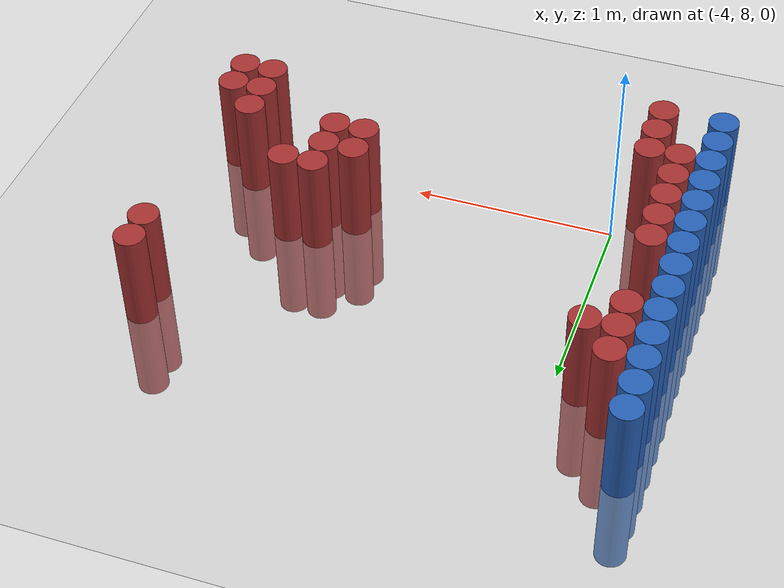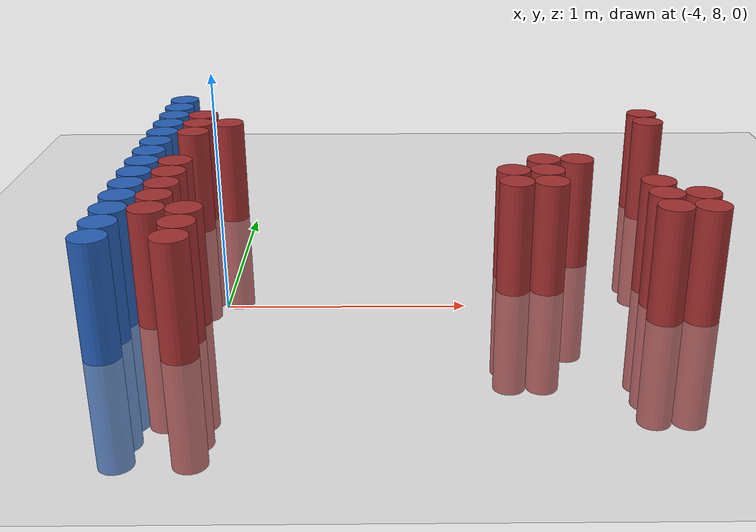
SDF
<sdf version="1.6">
 <world name="default">
  <model name="ground_plane">
   <static>1</static>
   <link name="link">
    <collision name="collision">
     <geometry><plane><normal>0 0 1</normal><size>100 100</size></plane></geometry>
     <surface><friction><ode><mu>100</mu><mu2>50</mu2></ode></friction></surface>
    </collision>
    <visual name="visual">
     <cast_shadows>0</cast_shadows>
     <geometry><plane><normal>0 0 1</normal><size>100 100</size></plane></geometry>
     <material>
      <script><uri>file://media/materials/scripts/gazebo.material</uri><name>Gazebo/Grey</name></script>
     </material>
    </visual>
   </link>
  </model>
  <model name="unit_cylinder_112">
   <static>1</static>
   <pose>-4.425000 7.575000 0.000000 0.000000 0.000000 0.000000</pose>
   <link name="link">
    <inertial>
     <mass>1</mass>
     <inertia><ixx>0.145833</ixx><ixy>0</ixy><ixz>0</ixz><iyy>0.145833</iyy><iyz>0</iyz><izz>0.125</izz></inertia>
    </inertial>
    <collision name="collision">
     <geometry><cylinder><radius>0.075000</radius><length>1</length></cylinder></geometry>
    </collision>
    <visual name="visual">
     <geometry><cylinder><radius>0.075000</radius><length>1</length></cylinder></geometry>
     <material>
      <ambient>0.152000 0.379000 0.720000 1</ambient>
      <diffuse>0.152000 0.379000 0.720000 1</diffuse>
     </material>
     <material>
      <script><name>Gazebo/Grey</name><uri>file://media/materials/scripts/gazebo.material</uri></script>
     </material>
    </visual>
    <sensor name="sensor_contact" type="contact"><contact><collision>collision</collision></contact></sensor>
   </link>
   <plugin filename="gz-sim-touchplugin-system" name="gz::sim::systems::TouchPlugin">
    <target>robot</target>
    <namespace>robot</namespace>
    <time>0.001</time>
    <enabled>true</enabled>
   </plugin>
  </model>
  <model name="unit_cylinder_113">
   <static>1</static>
   <pose>-4.425000 7.725000 0.000000 0.000000 0.000000 0.000000</pose>
   <link name="link">
    <inertial>
     <mass>1</mass>
     <inertia><ixx>0.145833</ixx><ixy>0</ixy><ixz>0</ixz><iyy>0.145833</iyy><iyz>0</iyz><izz>0.125</izz></inertia>
    </inertial>
    <collision name="collision">
     <geometry><cylinder><radius>0.075000</radius><length>1</length></cylinder></geometry>
    </collision>
    <visual name="visual">
     <geometry><cylinder><radius>0.075000</radius><length>1</length></cylinder></geometry>
     <material>
      <ambient>0.152000 0.379000 0.720000 1</ambient>
      <diffuse>0.152000 0.379000 0.720000 1</diffuse>
     </material>
     <material>
      <script><name>Gazebo/Grey</name><uri>file://media/materials/scripts/gazebo.material</uri></script>
     </material>
    </visual>
    <sensor name="sensor_contact" type="contact"><contact><collision>collision</collision></contact></sensor>
   </link>
   <plugin filename="gz-sim-touchplugin-system" name="gz::sim::systems::TouchPlugin">
    <target>robot</target>
    <namespace>robot</namespace>
    <time>0.001</time>
    <enabled>true</enabled>
   </plugin>
  </model>
  <model name="unit_cylinder_114">
   <static>1</static>
   <pose>-4.425000 7.875000 0.000000 0.000000 0.000000 0.000000</pose>
   <link name="link">
    <inertial>
     <mass>1</mass>
     <inertia><ixx>0.145833</ixx><ixy>0</ixy><ixz>0</ixz><iyy>0.145833</iyy><iyz>0</iyz><izz>0.125</izz></inertia>
    </inertial>
    <collision name="collision">
     <geometry><cylinder><radius>0.075000</radius><length>1</length></cylinder></geometry>
    </collision>
    <visual name="visual">
     <geometry><cylinder><radius>0.075000</radius><length>1</length></cylinder></geometry>
     <material>
      <ambient>0.152000 0.379000 0.720000 1</ambient>
      <diffuse>0.152000 0.379000 0.720000 1</diffuse>
     </material>
     <material>
      <script><name>Gazebo/Grey</name><uri>file://media/materials/scripts/gazebo.material</uri></script>
     </material>
    </visual>
    <sensor name="sensor_contact" type="contact"><contact><collision>collision</collision></contact></sensor>
   </link>
   <plugin filename="gz-sim-touchplugin-system" name="gz::sim::systems::TouchPlugin">
    <target>robot</target>
    <namespace>robot</namespace>
    <time>0.001</time>
    <enabled>true</enabled>
   </plugin>
  </model>
  <model name="unit_cylinder_115">
   <static>1</static>
   <pose>-4.425000 8.025000 0.000000 0.000000 0.000000 0.000000</pose>
   <link name="link">
    <inertial>
     <mass>1</mass>
     <inertia><ixx>0.145833</ixx><ixy>0</ixy><ixz>0</ixz><iyy>0.145833</iyy><iyz>0</iyz><izz>0.125</izz></inertia>
    </inertial>
    <collision name="collision">
     <geometry><cylinder><radius>0.075000</radius><length>1</length></cylinder></geometry>
    </collision>
    <visual name="visual">
     <geometry><cylinder><radius>0.075000</radius><length>1</length></cylinder></geometry>
     <material>
      <ambient>0.152000 0.379000 0.720000 1</ambient>
      <diffuse>0.152000 0.379000 0.720000 1</diffuse>
     </material>
     <material>
      <script><name>Gazebo/Grey</name><uri>file://media/materials/scripts/gazebo.material</uri></script>
     </material>
    </visual>
    <sensor name="sensor_contact" type="contact"><contact><collision>collision</collision></contact></sensor>
   </link>
   <plugin filename="gz-sim-touchplugin-system" name="gz::sim::systems::TouchPlugin">
    <target>robot</target>
    <namespace>robot</namespace>
    <time>0.001</time>
    <enabled>true</enabled>
   </plugin>
  </model>
  <model name="unit_cylinder_116">
   <static>1</static>
   <pose>-4.425000 8.175000 0.000000 0.000000 0.000000 0.000000</pose>
   <link name="link">
    <inertial>
     <mass>1</mass>
     <inertia><ixx>0.145833</ixx><ixy>0</ixy><ixz>0</ixz><iyy>0.145833</iyy><iyz>0</iyz><izz>0.125</izz></inertia>
    </inertial>
    <collision name="collision">
     <geometry><cylinder><radius>0.075000</radius><length>1</length></cylinder></geometry>
    </collision>
    <visual name="visual">
     <geometry><cylinder><radius>0.075000</radius><length>1</length></cylinder></geometry>
     <material>
      <ambient>0.152000 0.379000 0.720000 1</ambient>
      <diffuse>0.152000 0.379000 0.720000 1</diffuse>
     </material>
     <material>
      <script><name>Gazebo/Grey</name><uri>file://media/materials/scripts/gazebo.material</uri></script>
     </material>
    </visual>
    <sensor name="sensor_contact" type="contact"><contact><collision>collision</collision></contact></sensor>
   </link>
   <plugin filename="gz-sim-touchplugin-system" name="gz::sim::systems::TouchPlugin">
    <target>robot</target>
    <namespace>robot</namespace>
    <time>0.001</time>
    <enabled>true</enabled>
   </plugin>
  </model>
  <model name="unit_cylinder_117">
   <static>1</static>
   <pose>-4.425000 8.325000 0.000000 0.000000 0.000000 0.000000</pose>
   <link name="link">
    <inertial>
     <mass>1</mass>
     <inertia><ixx>0.145833</ixx><ixy>0</ixy><ixz>0</ixz><iyy>0.145833</iyy><iyz>0</iyz><izz>0.125</izz></inertia>
    </inertial>
    <collision name="collision">
     <geometry><cylinder><radius>0.075000</radius><length>1</length></cylinder></geometry>
    </collision>
    <visual name="visual">
     <geometry><cylinder><radius>0.075000</radius><length>1</length></cylinder></geometry>
     <material>
      <ambient>0.152000 0.379000 0.720000 1</ambient>
      <diffuse>0.152000 0.379000 0.720000 1</diffuse>
     </material>
     <material>
      <script><name>Gazebo/Grey</name><uri>file://media/materials/scripts/gazebo.material</uri></script>
     </material>
    </visual>
    <sensor name="sensor_contact" type="contact"><contact><collision>collision</collision></contact></sensor>
   </link>
   <plugin filename="gz-sim-touchplugin-system" name="gz::sim::systems::TouchPlugin">
    <target>robot</target>
    <namespace>robot</namespace>
    <time>0.001</time>
    <enabled>true</enabled>
   </plugin>
  </model>
  <model name="unit_cylinder_118">
   <static>1</static>
   <pose>-4.425000 8.475000 0.000000 0.000000 0.000000 0.000000</pose>
   <link name="link">
    <inertial>
     <mass>1</mass>
     <inertia><ixx>0.145833</ixx><ixy>0</ixy><ixz>0</ixz><iyy>0.145833</iyy><iyz>0</iyz><izz>0.125</izz></inertia>
    </inertial>
    <collision name="collision">
     <geometry><cylinder><radius>0.075000</radius><length>1</length></cylinder></geometry>
    </collision>
    <visual name="visual">
     <geometry><cylinder><radius>0.075000</radius><length>1</length></cylinder></geometry>
     <material>
      <ambient>0.152000 0.379000 0.720000 1</ambient>
      <diffuse>0.152000 0.379000 0.720000 1</diffuse>
     </material>
     <material>
      <script><name>Gazebo/Grey</name><uri>file://media/materials/scripts/gazebo.material</uri></script>
     </material>
    </visual>
    <sensor name="sensor_contact" type="contact"><contact><collision>collision</collision></contact></sensor>
   </link>
   <plugin filename="gz-sim-touchplugin-system" name="gz::sim::systems::TouchPlugin">
    <target>robot</target>
    <namespace>robot</namespace>
    <time>0.001</time>
    <enabled>true</enabled>
   </plugin>
  </model>
  <model name="unit_cylinder_119">
   <static>1</static>
   <pose>-4.425000 8.625000 0.000000 0.000000 0.000000 0.000000</pose>
   <link name="link">
    <inertial>
     <mass>1</mass>
     <inertia><ixx>0.145833</ixx><ixy>0</ixy><ixz>0</ixz><iyy>0.145833</iyy><iyz>0</iyz><izz>0.125</izz></inertia>
    </inertial>
    <collision name="collision">
     <geometry><cylinder><radius>0.075000</radius><length>1</length></cylinder></geometry>
    </collision>
    <visual name="visual">
     <geometry><cylinder><radius>0.075000</radius><length>1</length></cylinder></geometry>
     <material>
      <ambient>0.152000 0.379000 0.720000 1</ambient>
      <diffuse>0.152000 0.379000 0.720000 1</diffuse>
     </material>
     <material>
      <script><name>Gazebo/Grey</name><uri>file://media/materials/scripts/gazebo.material</uri></script>
     </material>
    </visual>
    <sensor name="sensor_contact" type="contact"><contact><collision>collision</collision></contact></sensor>
   </link>
   <plugin filename="gz-sim-touchplugin-system" name="gz::sim::systems::TouchPlugin">
    <target>robot</target>
    <namespace>robot</namespace>
    <time>0.001</time>
    <enabled>true</enabled>
   </plugin>
  </model>
  <model name="unit_cylinder_120">
   <static>1</static>
   <pose>-4.425000 8.775000 0.000000 0.000000 0.000000 0.000000</pose>
   <link name="link">
    <inertial>
     <mass>1</mass>
     <inertia><ixx>0.145833</ixx><ixy>0</ixy><ixz>0</ixz><iyy>0.145833</iyy><iyz>0</iyz><izz>0.125</izz></inertia>
    </inertial>
    <collision name="collision">
     <geometry><cylinder><radius>0.075000</radius><length>1</length></cylinder></geometry>
    </collision>
    <visual name="visual">
     <geometry><cylinder><radius>0.075000</radius><length>1</length></cylinder></geometry>
     <material>
      <ambient>0.152000 0.379000 0.720000 1</ambient>
      <diffuse>0.152000 0.379000 0.720000 1</diffuse>
     </material>
     <material>
      <script><name>Gazebo/Grey</name><uri>file://media/materials/scripts/gazebo.material</uri></script>
     </material>
    </visual>
    <sensor name="sensor_contact" type="contact"><contact><collision>collision</collision></contact></sensor>
   </link>
   <plugin filename="gz-sim-touchplugin-system" name="gz::sim::systems::TouchPlugin">
    <target>robot</target>
    <namespace>robot</namespace>
    <time>0.001</time>
    <enabled>true</enabled>
   </plugin>
  </model>
  <model name="unit_cylinder_121">
   <static>1</static>
   <pose>-4.425000 8.925000 0.000000 0.000000 0.000000 0.000000</pose>
   <link name="link">
    <inertial>
     <mass>1</mass>
     <inertia><ixx>0.145833</ixx><ixy>0</ixy><ixz>0</ixz><iyy>0.145833</iyy><iyz>0</iyz><izz>0.125</izz></inertia>
    </inertial>
    <collision name="collision">
     <geometry><cylinder><radius>0.075000</radius><length>1</length></cylinder></geometry>
    </collision>
    <visual name="visual">
     <geometry><cylinder><radius>0.075000</radius><length>1</length></cylinder></geometry>
     <material>
      <ambient>0.152000 0.379000 0.720000 1</ambient>
      <diffuse>0.152000 0.379000 0.720000 1</diffuse>
     </material>
     <material>
      <script><name>Gazebo/Grey</name><uri>file://media/materials/scripts/gazebo.material</uri></script>
     </material>
    </visual>
    <sensor name="sensor_contact" type="contact"><contact><collision>collision</collision></contact></sensor>
   </link>
   <plugin filename="gz-sim-touchplugin-system" name="gz::sim::systems::TouchPlugin">
    <target>robot</target>
    <namespace>robot</namespace>
    <time>0.001</time>
    <enabled>true</enabled>
   </plugin>
  </model>
  <model name="unit_cylinder_122">
   <static>1</static>
   <pose>-4.425000 9.075000 0.000000 0.000000 0.000000 0.000000</pose>
   <link name="link">
    <inertial>
     <mass>1</mass>
     <inertia><ixx>0.145833</ixx><ixy>0</ixy><ixz>0</ixz><iyy>0.145833</iyy><iyz>0</iyz><izz>0.125</izz></inertia>
    </inertial>
    <collision name="collision">
     <geometry><cylinder><radius>0.075000</radius><length>1</length></cylinder></geometry>
    </collision>
    <visual name="visual">
     <geometry><cylinder><radius>0.075000</radius><length>1</length></cylinder></geometry>
     <material>
      <ambient>0.152000 0.379000 0.720000 1</ambient>
      <diffuse>0.152000 0.379000 0.720000 1</diffuse>
     </material>
     <material>
      <script><name>Gazebo/Grey</name><uri>file://media/materials/scripts/gazebo.material</uri></script>
     </material>
    </visual>
    <sensor name="sensor_contact" type="contact"><contact><collision>collision</collision></contact></sensor>
   </link>
   <plugin filename="gz-sim-touchplugin-system" name="gz::sim::systems::TouchPlugin">
    <target>robot</target>
    <namespace>robot</namespace>
    <time>0.001</time>
    <enabled>true</enabled>
   </plugin>
  </model>
  <model name="unit_cylinder_123">
   <static>1</static>
   <pose>-4.425000 9.225000 0.000000 0.000000 0.000000 0.000000</pose>
   <link name="link">
    <inertial>
     <mass>1</mass>
     <inertia><ixx>0.145833</ixx><ixy>0</ixy><ixz>0</ixz><iyy>0.145833</iyy><iyz>0</iyz><izz>0.125</izz></inertia>
    </inertial>
    <collision name="collision">
     <geometry><cylinder><radius>0.075000</radius><length>1</length></cylinder></geometry>
    </collision>
    <visual name="visual">
     <geometry><cylinder><radius>0.075000</radius><length>1</length></cylinder></geometry>
     <material>
      <ambient>0.152000 0.379000 0.720000 1</ambient>
      <diffuse>0.152000 0.379000 0.720000 1</diffuse>
     </material>
     <material>
      <script><name>Gazebo/Grey</name><uri>file://media/materials/scripts/gazebo.material</uri></script>
     </material>
    </visual>
    <sensor name="sensor_contact" type="contact"><contact><collision>collision</collision></contact></sensor>
   </link>
   <plugin filename="gz-sim-touchplugin-system" name="gz::sim::systems::TouchPlugin">
    <target>robot</target>
    <namespace>robot</namespace>
    <time>0.001</time>
    <enabled>true</enabled>
   </plugin>
  </model>
  <model name="unit_cylinder_124">
   <static>1</static>
   <pose>-4.425000 9.375000 0.000000 0.000000 0.000000 0.000000</pose>
   <link name="link">
    <inertial>
     <mass>1</mass>
     <inertia><ixx>0.145833</ixx><ixy>0</ixy><ixz>0</ixz><iyy>0.145833</iyy><iyz>0</iyz><izz>0.125</izz></inertia>
    </inertial>
    <collision name="collision">
     <geometry><cylinder><radius>0.075000</radius><length>1</length></cylinder></geometry>
    </collision>
    <visual name="visual">
     <geometry><cylinder><radius>0.075000</radius><length>1</length></cylinder></geometry>
     <material>
      <ambient>0.152000 0.379000 0.720000 1</ambient>
      <diffuse>0.152000 0.379000 0.720000 1</diffuse>
     </material>
     <material>
      <script><name>Gazebo/Grey</name><uri>file://media/materials/scripts/gazebo.material</uri></script>
     </material>
    </visual>
    <sensor name="sensor_contact" type="contact"><contact><collision>collision</collision></contact></sensor>
   </link>
   <plugin filename="gz-sim-touchplugin-system" name="gz::sim::systems::TouchPlugin">
    <target>robot</target>
    <namespace>robot</namespace>
    <time>0.001</time>
    <enabled>true</enabled>
   </plugin>
  </model>
  <model name="unit_cylinder_125">
   <static>1</static>
   <pose>-4.425000 9.525000 0.000000 0.000000 0.000000 0.000000</pose>
   <link name="link">
    <inertial>
     <mass>1</mass>
     <inertia><ixx>0.145833</ixx><ixy>0</ixy><ixz>0</ixz><iyy>0.145833</iyy><iyz>0</iyz><izz>0.125</izz></inertia>
    </inertial>
    <collision name="collision">
     <geometry><cylinder><radius>0.075000</radius><length>1</length></cylinder></geometry>
    </collision>
    <visual name="visual">
     <geometry><cylinder><radius>0.075000</radius><length>1</length></cylinder></geometry>
     <material>
      <ambient>0.152000 0.379000 0.720000 1</ambient>
      <diffuse>0.152000 0.379000 0.720000 1</diffuse>
     </material>
     <material>
      <script><name>Gazebo/Grey</name><uri>file://media/materials/scripts/gazebo.material</uri></script>
     </material>
    </visual>
    <sensor name="sensor_contact" type="contact"><contact><collision>collision</collision></contact></sensor>
   </link>
   <plugin filename="gz-sim-touchplugin-system" name="gz::sim::systems::TouchPlugin">
    <target>robot</target>
    <namespace>robot</namespace>
    <time>0.001</time>
    <enabled>true</enabled>
   </plugin>
  </model>
  <model name="unit_cylinder_131">
   <static>1</static>
   <pose>-4.275000 7.875000 0.000000 0.000000 0.000000 0.000000</pose>
   <link name="link">
    <inertial>
     <mass>1</mass>
     <inertia><ixx>0.145833</ixx><ixy>0</ixy><ixz>0</ixz><iyy>0.145833</iyy><iyz>0</iyz><izz>0.125</izz></inertia>
    </inertial>
    <collision name="collision">
     <geometry><cylinder><radius>0.075000</radius><length>1</length></cylinder></geometry>
    </collision>
    <visual name="visual">
     <geometry><cylinder><radius>0.075000</radius><length>1</length></cylinder></geometry>
     <material>
      <ambient>0.648000 0.192000 0.192000 1</ambient>
      <diffuse>0.648000 0.192000 0.192000 1</diffuse>
     </material>
     <material>
      <script><name>Gazebo/Grey</name><uri>file://media/materials/scripts/gazebo.material</uri></script>
     </material>
    </visual>
    <sensor name="sensor_contact" type="contact"><contact><collision>collision</collision></contact></sensor>
   </link>
   <plugin filename="gz-sim-touchplugin-system" name="gz::sim::systems::TouchPlugin">
    <target>robot</target>
    <namespace>robot</namespace>
    <time>0.001</time>
    <enabled>true</enabled>
   </plugin>
  </model>
  <model name="unit_cylinder_132">
   <static>1</static>
   <pose>-4.275000 8.025000 0.000000 0.000000 0.000000 0.000000</pose>
   <link name="link">
    <inertial>
     <mass>1</mass>
     <inertia><ixx>0.145833</ixx><ixy>0</ixy><ixz>0</ixz><iyy>0.145833</iyy><iyz>0</iyz><izz>0.125</izz></inertia>
    </inertial>
    <collision name="collision">
     <geometry><cylinder><radius>0.075000</radius><length>1</length></cylinder></geometry>
    </collision>
    <visual name="visual">
     <geometry><cylinder><radius>0.075000</radius><length>1</length></cylinder></geometry>
     <material>
      <ambient>0.648000 0.192000 0.192000 1</ambient>
      <diffuse>0.648000 0.192000 0.192000 1</diffuse>
     </material>
     <material>
      <script><name>Gazebo/Grey</name><uri>file://media/materials/scripts/gazebo.material</uri></script>
     </material>
    </visual>
    <sensor name="sensor_contact" type="contact"><contact><collision>collision</collision></contact></sensor>
   </link>
   <plugin filename="gz-sim-touchplugin-system" name="gz::sim::systems::TouchPlugin">
    <target>robot</target>
    <namespace>robot</namespace>
    <time>0.001</time>
    <enabled>true</enabled>
   </plugin>
  </model>
  <model name="unit_cylinder_133">
   <static>1</static>
   <pose>-4.275000 8.175000 0.000000 0.000000 0.000000 0.000000</pose>
   <link name="link">
    <inertial>
     <mass>1</mass>
     <inertia><ixx>0.145833</ixx><ixy>0</ixy><ixz>0</ixz><iyy>0.145833</iyy><iyz>0</iyz><izz>0.125</izz></inertia>
    </inertial>
    <collision name="collision">
     <geometry><cylinder><radius>0.075000</radius><length>1</length></cylinder></geometry>
    </collision>
    <visual name="visual">
     <geometry><cylinder><radius>0.075000</radius><length>1</length></cylinder></geometry>
     <material>
      <ambient>0.648000 0.192000 0.192000 1</ambient>
      <diffuse>0.648000 0.192000 0.192000 1</diffuse>
     </material>
     <material>
      <script><name>Gazebo/Grey</name><uri>file://media/materials/scripts/gazebo.material</uri></script>
     </material>
    </visual>
    <sensor name="sensor_contact" type="contact"><contact><collision>collision</collision></contact></sensor>
   </link>
   <plugin filename="gz-sim-touchplugin-system" name="gz::sim::systems::TouchPlugin">
    <target>robot</target>
    <namespace>robot</namespace>
    <time>0.001</time>
    <enabled>true</enabled>
   </plugin>
  </model>
  <model name="unit_cylinder_134">
   <static>1</static>
   <pose>-4.275000 8.325000 0.000000 0.000000 0.000000 0.000000</pose>
   <link name="link">
    <inertial>
     <mass>1</mass>
     <inertia><ixx>0.145833</ixx><ixy>0</ixy><ixz>0</ixz><iyy>0.145833</iyy><iyz>0</iyz><izz>0.125</izz></inertia>
    </inertial>
    <collision name="collision">
     <geometry><cylinder><radius>0.075000</radius><length>1</length></cylinder></geometry>
    </collision>
    <visual name="visual">
     <geometry><cylinder><radius>0.075000</radius><length>1</length></cylinder></geometry>
     <material>
      <ambient>0.648000 0.192000 0.192000 1</ambient>
      <diffuse>0.648000 0.192000 0.192000 1</diffuse>
     </material>
     <material>
      <script><name>Gazebo/Grey</name><uri>file://media/materials/scripts/gazebo.material</uri></script>
     </material>
    </visual>
    <sensor name="sensor_contact" type="contact"><contact><collision>collision</collision></contact></sensor>
   </link>
   <plugin filename="gz-sim-touchplugin-system" name="gz::sim::systems::TouchPlugin">
    <target>robot</target>
    <namespace>robot</namespace>
    <time>0.001</time>
    <enabled>true</enabled>
   </plugin>
  </model>
  <model name="unit_cylinder_135">
   <static>1</static>
   <pose>-4.275000 8.475000 0.000000 0.000000 0.000000 0.000000</pose>
   <link name="link">
    <inertial>
     <mass>1</mass>
     <inertia><ixx>0.145833</ixx><ixy>0</ixy><ixz>0</ixz><iyy>0.145833</iyy><iyz>0</iyz><izz>0.125</izz></inertia>
    </inertial>
    <collision name="collision">
     <geometry><cylinder><radius>0.075000</radius><length>1</length></cylinder></geometry>
    </collision>
    <visual name="visual">
     <geometry><cylinder><radius>0.075000</radius><length>1</length></cylinder></geometry>
     <material>
      <ambient>0.648000 0.192000 0.192000 1</ambient>
      <diffuse>0.648000 0.192000 0.192000 1</diffuse>
     </material>
     <material>
      <script><name>Gazebo/Grey</name><uri>file://media/materials/scripts/gazebo.material</uri></script>
     </material>
    </visual>
    <sensor name="sensor_contact" type="contact"><contact><collision>collision</collision></contact></sensor>
   </link>
   <plugin filename="gz-sim-touchplugin-system" name="gz::sim::systems::TouchPlugin">
    <target>robot</target>
    <namespace>robot</namespace>
    <time>0.001</time>
    <enabled>true</enabled>
   </plugin>
  </model>
  <model name="unit_cylinder_136">
   <static>1</static>
   <pose>-4.275000 8.925000 0.000000 0.000000 0.000000 0.000000</pose>
   <link name="link">
    <inertial>
     <mass>1</mass>
     <inertia><ixx>0.145833</ixx><ixy>0</ixy><ixz>0</ixz><iyy>0.145833</iyy><iyz>0</iyz><izz>0.125</izz></inertia>
    </inertial>
    <collision name="collision">
     <geometry><cylinder><radius>0.075000</radius><length>1</length></cylinder></geometry>
    </collision>
    <visual name="visual">
     <geometry><cylinder><radius>0.075000</radius><length>1</length></cylinder></geometry>
     <material>
      <ambient>0.648000 0.192000 0.192000 1</ambient>
      <diffuse>0.648000 0.192000 0.192000 1</diffuse>
     </material>
     <material>
      <script><name>Gazebo/Grey</name><uri>file://media/materials/scripts/gazebo.material</uri></script>
     </material>
    </visual>
    <sensor name="sensor_contact" type="contact"><contact><collision>collision</collision></contact></sensor>
   </link>
   <plugin filename="gz-sim-touchplugin-system" name="gz::sim::systems::TouchPlugin">
    <target>robot</target>
    <namespace>robot</namespace>
    <time>0.001</time>
    <enabled>true</enabled>
   </plugin>
  </model>
  <model name="unit_cylinder_137">
   <static>1</static>
   <pose>-4.275000 9.075000 0.000000 0.000000 0.000000 0.000000</pose>
   <link name="link">
    <inertial>
     <mass>1</mass>
     <inertia><ixx>0.145833</ixx><ixy>0</ixy><ixz>0</ixz><iyy>0.145833</iyy><iyz>0</iyz><izz>0.125</izz></inertia>
    </inertial>
    <collision name="collision">
     <geometry><cylinder><radius>0.075000</radius><length>1</length></cylinder></geometry>
    </collision>
    <visual name="visual">
     <geometry><cylinder><radius>0.075000</radius><length>1</length></cylinder></geometry>
     <material>
      <ambient>0.648000 0.192000 0.192000 1</ambient>
      <diffuse>0.648000 0.192000 0.192000 1</diffuse>
     </material>
     <material>
      <script><name>Gazebo/Grey</name><uri>file://media/materials/scripts/gazebo.material</uri></script>
     </material>
    </visual>
    <sensor name="sensor_contact" type="contact"><contact><collision>collision</collision></contact></sensor>
   </link>
   <plugin filename="gz-sim-touchplugin-system" name="gz::sim::systems::TouchPlugin">
    <target>robot</target>
    <namespace>robot</namespace>
    <time>0.001</time>
    <enabled>true</enabled>
   </plugin>
  </model>
  <model name="unit_cylinder_138">
   <static>1</static>
   <pose>-4.275000 9.225000 0.000000 0.000000 0.000000 0.000000</pose>
   <link name="link">
    <inertial>
     <mass>1</mass>
     <inertia><ixx>0.145833</ixx><ixy>0</ixy><ixz>0</ixz><iyy>0.145833</iyy><iyz>0</iyz><izz>0.125</izz></inertia>
    </inertial>
    <collision name="collision">
     <geometry><cylinder><radius>0.075000</radius><length>1</length></cylinder></geometry>
    </collision>
    <visual name="visual">
     <geometry><cylinder><radius>0.075000</radius><length>1</length></cylinder></geometry>
     <material>
      <ambient>0.648000 0.192000 0.192000 1</ambient>
      <diffuse>0.648000 0.192000 0.192000 1</diffuse>
     </material>
     <material>
      <script><name>Gazebo/Grey</name><uri>file://media/materials/scripts/gazebo.material</uri></script>
     </material>
    </visual>
    <sensor name="sensor_contact" type="contact"><contact><collision>collision</collision></contact></sensor>
   </link>
   <plugin filename="gz-sim-touchplugin-system" name="gz::sim::systems::TouchPlugin">
    <target>robot</target>
    <namespace>robot</namespace>
    <time>0.001</time>
    <enabled>true</enabled>
   </plugin>
  </model>
  <model name="unit_cylinder_149">
   <static>1</static>
   <pose>-4.125000 7.575000 0.000000 0.000000 0.000000 0.000000</pose>
   <link name="link">
    <inertial>
     <mass>1</mass>
     <inertia><ixx>0.145833</ixx><ixy>0</ixy><ixz>0</ixz><iyy>0.145833</iyy><iyz>0</iyz><izz>0.125</izz></inertia>
    </inertial>
    <collision name="collision">
     <geometry><cylinder><radius>0.075000</radius><length>1</length></cylinder></geometry>
    </collision>
    <visual name="visual">
     <geometry><cylinder><radius>0.075000</radius><length>1</length></cylinder></geometry>
     <material>
      <ambient>0.648000 0.192000 0.192000 1</ambient>
      <diffuse>0.648000 0.192000 0.192000 1</diffuse>
     </material>
     <material>
      <script><name>Gazebo/Grey</name><uri>file://media/materials/scripts/gazebo.material</uri></script>
     </material>
    </visual>
    <sensor name="sensor_contact" type="contact"><contact><collision>collision</collision></contact></sensor>
   </link>
   <plugin filename="gz-sim-touchplugin-system" name="gz::sim::systems::TouchPlugin">
    <target>robot</target>
    <namespace>robot</namespace>
    <time>0.001</time>
    <enabled>true</enabled>
   </plugin>
  </model>
  <model name="unit_cylinder_150">
   <static>1</static>
   <pose>-4.125000 7.725000 0.000000 0.000000 0.000000 0.000000</pose>
   <link name="link">
    <inertial>
     <mass>1</mass>
     <inertia><ixx>0.145833</ixx><ixy>0</ixy><ixz>0</ixz><iyy>0.145833</iyy><iyz>0</iyz><izz>0.125</izz></inertia>
    </inertial>
    <collision name="collision">
     <geometry><cylinder><radius>0.075000</radius><length>1</length></cylinder></geometry>
    </collision>
    <visual name="visual">
     <geometry><cylinder><radius>0.075000</radius><length>1</length></cylinder></geometry>
     <material>
      <ambient>0.648000 0.192000 0.192000 1</ambient>
      <diffuse>0.648000 0.192000 0.192000 1</diffuse>
     </material>
     <material>
      <script><name>Gazebo/Grey</name><uri>file://media/materials/scripts/gazebo.material</uri></script>
     </material>
    </visual>
    <sensor name="sensor_contact" type="contact"><contact><collision>collision</collision></contact></sensor>
   </link>
   <plugin filename="gz-sim-touchplugin-system" name="gz::sim::systems::TouchPlugin">
    <target>robot</target>
    <namespace>robot</namespace>
    <time>0.001</time>
    <enabled>true</enabled>
   </plugin>
  </model>
  <model name="unit_cylinder_151">
   <static>1</static>
   <pose>-4.125000 7.875000 0.000000 0.000000 0.000000 0.000000</pose>
   <link name="link">
    <inertial>
     <mass>1</mass>
     <inertia><ixx>0.145833</ixx><ixy>0</ixy><ixz>0</ixz><iyy>0.145833</iyy><iyz>0</iyz><izz>0.125</izz></inertia>
    </inertial>
    <collision name="collision">
     <geometry><cylinder><radius>0.075000</radius><length>1</length></cylinder></geometry>
    </collision>
    <visual name="visual">
     <geometry><cylinder><radius>0.075000</radius><length>1</length></cylinder></geometry>
     <material>
      <ambient>0.648000 0.192000 0.192000 1</ambient>
      <diffuse>0.648000 0.192000 0.192000 1</diffuse>
     </material>
     <material>
      <script><name>Gazebo/Grey</name><uri>file://media/materials/scripts/gazebo.material</uri></script>
     </material>
    </visual>
    <sensor name="sensor_contact" type="contact"><contact><collision>collision</collision></contact></sensor>
   </link>
   <plugin filename="gz-sim-touchplugin-system" name="gz::sim::systems::TouchPlugin">
    <target>robot</target>
    <namespace>robot</namespace>
    <time>0.001</time>
    <enabled>true</enabled>
   </plugin>
  </model>
  <model name="unit_cylinder_152">
   <static>1</static>
   <pose>-4.125000 9.075000 0.000000 0.000000 0.000000 0.000000</pose>
   <link name="link">
    <inertial>
     <mass>1</mass>
     <inertia><ixx>0.145833</ixx><ixy>0</ixy><ixz>0</ixz><iyy>0.145833</iyy><iyz>0</iyz><izz>0.125</izz></inertia>
    </inertial>
    <collision name="collision">
     <geometry><cylinder><radius>0.075000</radius><length>1</length></cylinder></geometry>
    </collision>
    <visual name="visual">
     <geometry><cylinder><radius>0.075000</radius><length>1</length></cylinder></geometry>
     <material>
      <ambient>0.648000 0.192000 0.192000 1</ambient>
      <diffuse>0.648000 0.192000 0.192000 1</diffuse>
     </material>
     <material>
      <script><name>Gazebo/Grey</name><uri>file://media/materials/scripts/gazebo.material</uri></script>
     </material>
    </visual>
    <sensor name="sensor_contact" type="contact"><contact><collision>collision</collision></contact></sensor>
   </link>
   <plugin filename="gz-sim-touchplugin-system" name="gz::sim::systems::TouchPlugin">
    <target>robot</target>
    <namespace>robot</namespace>
    <time>0.001</time>
    <enabled>true</enabled>
   </plugin>
  </model>
  <model name="unit_cylinder_171">
   <static>1</static>
   <pose>-2.775000 8.175000 0.000000 0.000000 0.000000 0.000000</pose>
   <link name="link">
    <inertial>
     <mass>1</mass>
     <inertia><ixx>0.145833</ixx><ixy>0</ixy><ixz>0</ixz><iyy>0.145833</iyy><iyz>0</iyz><izz>0.125</izz></inertia>
    </inertial>
    <collision name="collision">
     <geometry><cylinder><radius>0.075000</radius><length>1</length></cylinder></geometry>
    </collision>
    <visual name="visual">
     <geometry><cylinder><radius>0.075000</radius><length>1</length></cylinder></geometry>
     <material>
      <ambient>0.648000 0.192000 0.192000 1</ambient>
      <diffuse>0.648000 0.192000 0.192000 1</diffuse>
     </material>
     <material>
      <script><name>Gazebo/Grey</name><uri>file://media/materials/scripts/gazebo.material</uri></script>
     </material>
    </visual>
    <sensor name="sensor_contact" type="contact"><contact><collision>collision</collision></contact></sensor>
   </link>
   <plugin filename="gz-sim-touchplugin-system" name="gz::sim::systems::TouchPlugin">
    <target>robot</target>
    <namespace>robot</namespace>
    <time>0.001</time>
    <enabled>true</enabled>
   </plugin>
  </model>
  <model name="unit_cylinder_172">
   <static>1</static>
   <pose>-2.775000 8.325000 0.000000 0.000000 0.000000 0.000000</pose>
   <link name="link">
    <inertial>
     <mass>1</mass>
     <inertia><ixx>0.145833</ixx><ixy>0</ixy><ixz>0</ixz><iyy>0.145833</iyy><iyz>0</iyz><izz>0.125</izz></inertia>
    </inertial>
    <collision name="collision">
     <geometry><cylinder><radius>0.075000</radius><length>1</length></cylinder></geometry>
    </collision>
    <visual name="visual">
     <geometry><cylinder><radius>0.075000</radius><length>1</length></cylinder></geometry>
     <material>
      <ambient>0.648000 0.192000 0.192000 1</ambient>
      <diffuse>0.648000 0.192000 0.192000 1</diffuse>
     </material>
     <material>
      <script><name>Gazebo/Grey</name><uri>file://media/materials/scripts/gazebo.material</uri></script>
     </material>
    </visual>
    <sensor name="sensor_contact" type="contact"><contact><collision>collision</collision></contact></sensor>
   </link>
   <plugin filename="gz-sim-touchplugin-system" name="gz::sim::systems::TouchPlugin">
    <target>robot</target>
    <namespace>robot</namespace>
    <time>0.001</time>
    <enabled>true</enabled>
   </plugin>
  </model>
  <model name="unit_cylinder_175">
   <static>1</static>
   <pose>-2.625000 8.175000 0.000000 0.000000 0.000000 0.000000</pose>
   <link name="link">
    <inertial>
     <mass>1</mass>
     <inertia><ixx>0.145833</ixx><ixy>0</ixy><ixz>0</ixz><iyy>0.145833</iyy><iyz>0</iyz><izz>0.125</izz></inertia>
    </inertial>
    <collision name="collision">
     <geometry><cylinder><radius>0.075000</radius><length>1</length></cylinder></geometry>
    </collision>
    <visual name="visual">
     <geometry><cylinder><radius>0.075000</radius><length>1</length></cylinder></geometry>
     <material>
      <ambient>0.648000 0.192000 0.192000 1</ambient>
      <diffuse>0.648000 0.192000 0.192000 1</diffuse>
     </material>
     <material>
      <script><name>Gazebo/Grey</name><uri>file://media/materials/scripts/gazebo.material</uri></script>
     </material>
    </visual>
    <sensor name="sensor_contact" type="contact"><contact><collision>collision</collision></contact></sensor>
   </link>
   <plugin filename="gz-sim-touchplugin-system" name="gz::sim::systems::TouchPlugin">
    <target>robot</target>
    <namespace>robot</namespace>
    <time>0.001</time>
    <enabled>true</enabled>
   </plugin>
  </model>
  <model name="unit_cylinder_176">
   <static>1</static>
   <pose>-2.625000 8.325000 0.000000 0.000000 0.000000 0.000000</pose>
   <link name="link">
    <inertial>
     <mass>1</mass>
     <inertia><ixx>0.145833</ixx><ixy>0</ixy><ixz>0</ixz><iyy>0.145833</iyy><iyz>0</iyz><izz>0.125</izz></inertia>
    </inertial>
    <collision name="collision">
     <geometry><cylinder><radius>0.075000</radius><length>1</length></cylinder></geometry>
    </collision>
    <visual name="visual">
     <geometry><cylinder><radius>0.075000</radius><length>1</length></cylinder></geometry>
     <material>
      <ambient>0.648000 0.192000 0.192000 1</ambient>
      <diffuse>0.648000 0.192000 0.192000 1</diffuse>
     </material>
     <material>
      <script><name>Gazebo/Grey</name><uri>file://media/materials/scripts/gazebo.material</uri></script>
     </material>
    </visual>
    <sensor name="sensor_contact" type="contact"><contact><collision>collision</collision></contact></sensor>
   </link>
   <plugin filename="gz-sim-touchplugin-system" name="gz::sim::systems::TouchPlugin">
    <target>robot</target>
    <namespace>robot</namespace>
    <time>0.001</time>
    <enabled>true</enabled>
   </plugin>
  </model>
  <model name="unit_cylinder_177">
   <static>1</static>
   <pose>-2.625000 8.475000 0.000000 0.000000 0.000000 0.000000</pose>
   <link name="link">
    <inertial>
     <mass>1</mass>
     <inertia><ixx>0.145833</ixx><ixy>0</ixy><ixz>0</ixz><iyy>0.145833</iyy><iyz>0</iyz><izz>0.125</izz></inertia>
    </inertial>
    <collision name="collision">
     <geometry><cylinder><radius>0.075000</radius><length>1</length></cylinder></geometry>
    </collision>
    <visual name="visual">
     <geometry><cylinder><radius>0.075000</radius><length>1</length></cylinder></geometry>
     <material>
      <ambient>0.648000 0.192000 0.192000 1</ambient>
      <diffuse>0.648000 0.192000 0.192000 1</diffuse>
     </material>
     <material>
      <script><name>Gazebo/Grey</name><uri>file://media/materials/scripts/gazebo.material</uri></script>
     </material>
    </visual>
    <sensor name="sensor_contact" type="contact"><contact><collision>collision</collision></contact></sensor>
   </link>
   <plugin filename="gz-sim-touchplugin-system" name="gz::sim::systems::TouchPlugin">
    <target>robot</target>
    <namespace>robot</namespace>
    <time>0.001</time>
    <enabled>true</enabled>
   </plugin>
  </model>
  <model name="unit_cylinder_180">
   <static>1</static>
   <pose>-2.475000 8.475000 0.000000 0.000000 0.000000 0.000000</pose>
   <link name="link">
    <inertial>
     <mass>1</mass>
     <inertia><ixx>0.145833</ixx><ixy>0</ixy><ixz>0</ixz><iyy>0.145833</iyy><iyz>0</iyz><izz>0.125</izz></inertia>
    </inertial>
    <collision name="collision">
     <geometry><cylinder><radius>0.075000</radius><length>1</length></cylinder></geometry>
    </collision>
    <visual name="visual">
     <geometry><cylinder><radius>0.075000</radius><length>1</length></cylinder></geometry>
     <material>
      <ambient>0.648000 0.192000 0.192000 1</ambient>
      <diffuse>0.648000 0.192000 0.192000 1</diffuse>
     </material>
     <material>
      <script><name>Gazebo/Grey</name><uri>file://media/materials/scripts/gazebo.material</uri></script>
     </material>
    </visual>
    <sensor name="sensor_contact" type="contact"><contact><collision>collision</collision></contact></sensor>
   </link>
   <plugin filename="gz-sim-touchplugin-system" name="gz::sim::systems::TouchPlugin">
    <target>robot</target>
    <namespace>robot</namespace>
    <time>0.001</time>
    <enabled>true</enabled>
   </plugin>
  </model>
  <model name="unit_cylinder_190">
   <static>1</static>
   <pose>-2.175000 7.875000 0.000000 0.000000 0.000000 0.000000</pose>
   <link name="link">
    <inertial>
     <mass>1</mass>
     <inertia><ixx>0.145833</ixx><ixy>0</ixy><ixz>0</ixz><iyy>0.145833</iyy><iyz>0</iyz><izz>0.125</izz></inertia>
    </inertial>
    <collision name="collision">
     <geometry><cylinder><radius>0.075000</radius><length>1</length></cylinder></geometry>
    </collision>
    <visual name="visual">
     <geometry><cylinder><radius>0.075000</radius><length>1</length></cylinder></geometry>
     <material>
      <ambient>0.648000 0.192000 0.192000 1</ambient>
      <diffuse>0.648000 0.192000 0.192000 1</diffuse>
     </material>
     <material>
      <script><name>Gazebo/Grey</name><uri>file://media/materials/scripts/gazebo.material</uri></script>
     </material>
    </visual>
    <sensor name="sensor_contact" type="contact"><contact><collision>collision</collision></contact></sensor>
   </link>
   <plugin filename="gz-sim-touchplugin-system" name="gz::sim::systems::TouchPlugin">
    <target>robot</target>
    <namespace>robot</namespace>
    <time>0.001</time>
    <enabled>true</enabled>
   </plugin>
  </model>
  <model name="unit_cylinder_191">
   <static>1</static>
   <pose>-2.175000 8.025000 0.000000 0.000000 0.000000 0.000000</pose>
   <link name="link">
    <inertial>
     <mass>1</mass>
     <inertia><ixx>0.145833</ixx><ixy>0</ixy><ixz>0</ixz><iyy>0.145833</iyy><iyz>0</iyz><izz>0.125</izz></inertia>
    </inertial>
    <collision name="collision">
     <geometry><cylinder><radius>0.075000</radius><length>1</length></cylinder></geometry>
    </collision>
    <visual name="visual">
     <geometry><cylinder><radius>0.075000</radius><length>1</length></cylinder></geometry>
     <material>
      <ambient>0.648000 0.192000 0.192000 1</ambient>
      <diffuse>0.648000 0.192000 0.192000 1</diffuse>
     </material>
     <material>
      <script><name>Gazebo/Grey</name><uri>file://media/materials/scripts/gazebo.material</uri></script>
     </material>
    </visual>
    <sensor name="sensor_contact" type="contact"><contact><collision>collision</collision></contact></sensor>
   </link>
   <plugin filename="gz-sim-touchplugin-system" name="gz::sim::systems::TouchPlugin">
    <target>robot</target>
    <namespace>robot</namespace>
    <time>0.001</time>
    <enabled>true</enabled>
   </plugin>
  </model>
  <model name="unit_cylinder_192">
   <static>1</static>
   <pose>-2.175000 8.175000 0.000000 0.000000 0.000000 0.000000</pose>
   <link name="link">
    <inertial>
     <mass>1</mass>
     <inertia><ixx>0.145833</ixx><ixy>0</ixy><ixz>0</ixz><iyy>0.145833</iyy><iyz>0</iyz><izz>0.125</izz></inertia>
    </inertial>
    <collision name="collision">
     <geometry><cylinder><radius>0.075000</radius><length>1</length></cylinder></geometry>
    </collision>
    <visual name="visual">
     <geometry><cylinder><radius>0.075000</radius><length>1</length></cylinder></geometry>
     <material>
      <ambient>0.648000 0.192000 0.192000 1</ambient>
      <diffuse>0.648000 0.192000 0.192000 1</diffuse>
     </material>
     <material>
      <script><name>Gazebo/Grey</name><uri>file://media/materials/scripts/gazebo.material</uri></script>
     </material>
    </visual>
    <sensor name="sensor_contact" type="contact"><contact><collision>collision</collision></contact></sensor>
   </link>
   <plugin filename="gz-sim-touchplugin-system" name="gz::sim::systems::TouchPlugin">
    <target>robot</target>
    <namespace>robot</namespace>
    <time>0.001</time>
    <enabled>true</enabled>
   </plugin>
  </model>
  <model name="unit_cylinder_197">
   <static>1</static>
   <pose>-2.025000 7.875000 0.000000 0.000000 0.000000 0.000000</pose>
   <link name="link">
    <inertial>
     <mass>1</mass>
     <inertia><ixx>0.145833</ixx><ixy>0</ixy><ixz>0</ixz><iyy>0.145833</iyy><iyz>0</iyz><izz>0.125</izz></inertia>
    </inertial>
    <collision name="collision">
     <geometry><cylinder><radius>0.075000</radius><length>1</length></cylinder></geometry>
    </collision>
    <visual name="visual">
     <geometry><cylinder><radius>0.075000</radius><length>1</length></cylinder></geometry>
     <material>
      <ambient>0.648000 0.192000 0.192000 1</ambient>
      <diffuse>0.648000 0.192000 0.192000 1</diffuse>
     </material>
     <material>
      <script><name>Gazebo/Grey</name><uri>file://media/materials/scripts/gazebo.material</uri></script>
     </material>
    </visual>
    <sensor name="sensor_contact" type="contact"><contact><collision>collision</collision></contact></sensor>
   </link>
   <plugin filename="gz-sim-touchplugin-system" name="gz::sim::systems::TouchPlugin">
    <target>robot</target>
    <namespace>robot</namespace>
    <time>0.001</time>
    <enabled>true</enabled>
   </plugin>
  </model>
  <model name="unit_cylinder_198">
   <static>1</static>
   <pose>-2.025000 8.025000 0.000000 0.000000 0.000000 0.000000</pose>
   <link name="link">
    <inertial>
     <mass>1</mass>
     <inertia><ixx>0.145833</ixx><ixy>0</ixy><ixz>0</ixz><iyy>0.145833</iyy><iyz>0</iyz><izz>0.125</izz></inertia>
    </inertial>
    <collision name="collision">
     <geometry><cylinder><radius>0.075000</radius><length>1</length></cylinder></geometry>
    </collision>
    <visual name="visual">
     <geometry><cylinder><radius>0.075000</radius><length>1</length></cylinder></geometry>
     <material>
      <ambient>0.648000 0.192000 0.192000 1</ambient>
      <diffuse>0.648000 0.192000 0.192000 1</diffuse>
     </material>
     <material>
      <script><name>Gazebo/Grey</name><uri>file://media/materials/scripts/gazebo.material</uri></script>
     </material>
    </visual>
    <sensor name="sensor_contact" type="contact"><contact><collision>collision</collision></contact></sensor>
   </link>
   <plugin filename="gz-sim-touchplugin-system" name="gz::sim::systems::TouchPlugin">
    <target>robot</target>
    <namespace>robot</namespace>
    <time>0.001</time>
    <enabled>true</enabled>
   </plugin>
  </model>
  <model name="unit_cylinder_199">
   <static>1</static>
   <pose>-2.025000 9.075000 0.000000 0.000000 0.000000 0.000000</pose>
   <link name="link">
    <inertial>
     <mass>1</mass>
     <inertia><ixx>0.145833</ixx><ixy>0</ixy><ixz>0</ixz><iyy>0.145833</iyy><iyz>0</iyz><izz>0.125</izz></inertia>
    </inertial>
    <collision name="collision">
     <geometry><cylinder><radius>0.075000</radius><length>1</length></cylinder></geometry>
    </collision>
    <visual name="visual">
     <geometry><cylinder><radius>0.075000</radius><length>1</length></cylinder></geometry>
     <material>
      <ambient>0.648000 0.192000 0.192000 1</ambient>
      <diffuse>0.648000 0.192000 0.192000 1</diffuse>
     </material>
     <material>
      <script><name>Gazebo/Grey</name><uri>file://media/materials/scripts/gazebo.material</uri></script>
     </material>
    </visual>
    <sensor name="sensor_contact" type="contact"><contact><collision>collision</collision></contact></sensor>
   </link>
   <plugin filename="gz-sim-touchplugin-system" name="gz::sim::systems::TouchPlugin">
    <target>robot</target>
    <namespace>robot</namespace>
    <time>0.001</time>
    <enabled>true</enabled>
   </plugin>
  </model>
  <model name="unit_cylinder_200">
   <static>1</static>
   <pose>-2.025000 9.225000 0.000000 0.000000 0.000000 0.000000</pose>
   <link name="link">
    <inertial>
     <mass>1</mass>
     <inertia><ixx>0.145833</ixx><ixy>0</ixy><ixz>0</ixz><iyy>0.145833</iyy><iyz>0</iyz><izz>0.125</izz></inertia>
    </inertial>
    <collision name="collision">
     <geometry><cylinder><radius>0.075000</radius><length>1</length></cylinder></geometry>
    </collision>
    <visual name="visual">
     <geometry><cylinder><radius>0.075000</radius><length>1</length></cylinder></geometry>
     <material>
      <ambient>0.648000 0.192000 0.192000 1</ambient>
      <diffuse>0.648000 0.192000 0.192000 1</diffuse>
     </material>
     <material>
      <script><name>Gazebo/Grey</name><uri>file://media/materials/scripts/gazebo.material</uri></script>
     </material>
    </visual>
    <sensor name="sensor_contact" type="contact"><contact><collision>collision</collision></contact></sensor>
   </link>
   <plugin filename="gz-sim-touchplugin-system" name="gz::sim::systems::TouchPlugin">
    <target>robot</target>
    <namespace>robot</namespace>
    <time>0.001</time>
    <enabled>true</enabled>
   </plugin>
  </model>
 </world>
</sdf>
